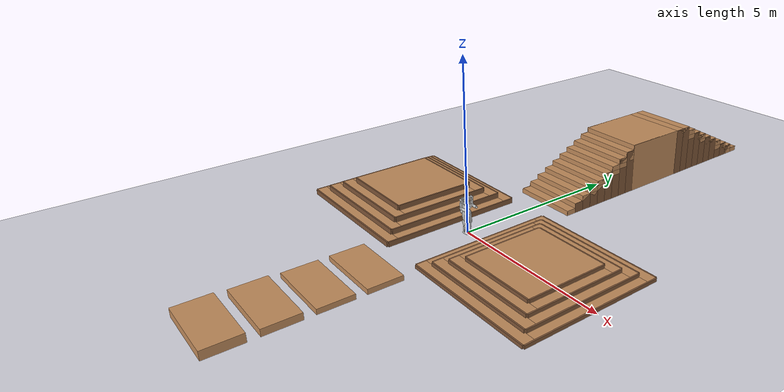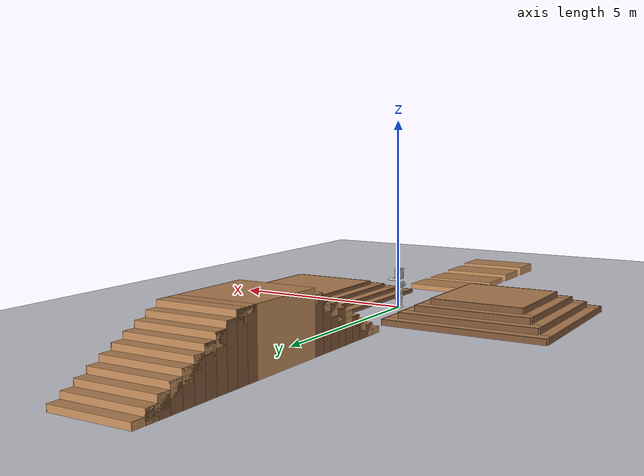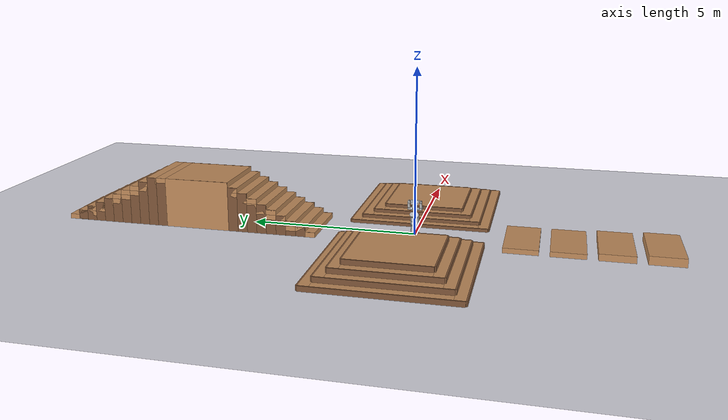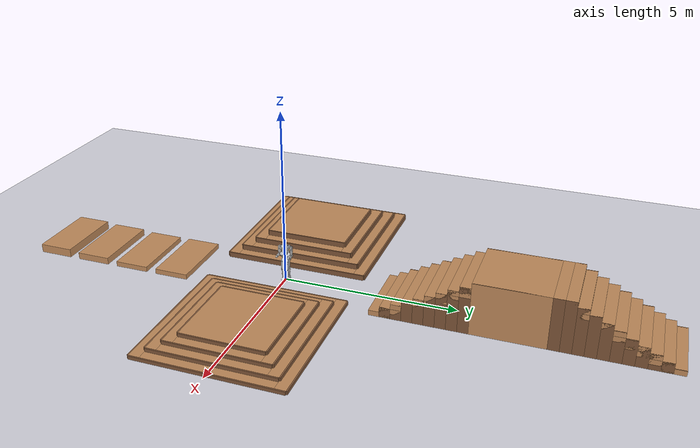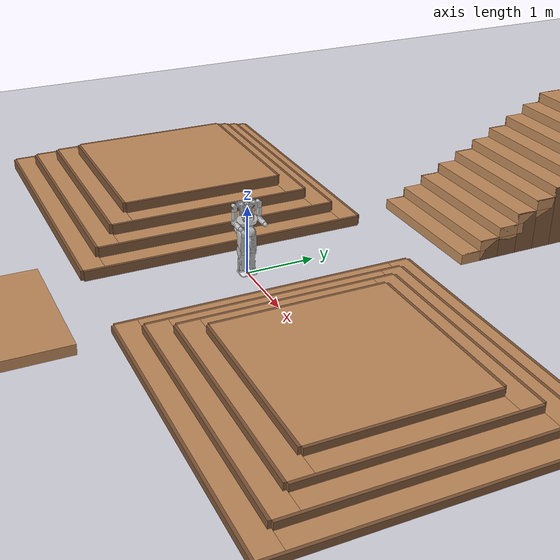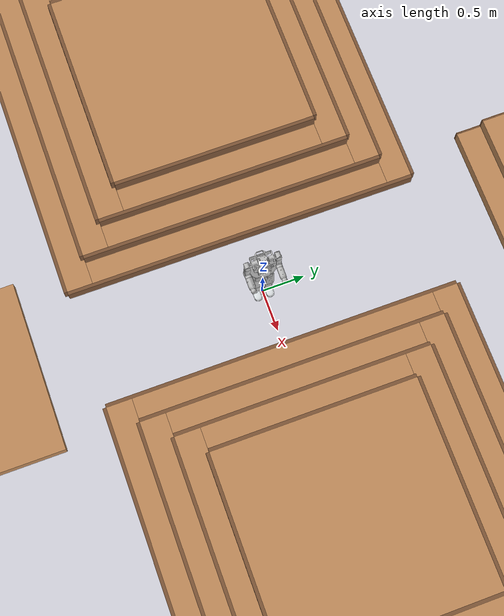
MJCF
<mujoco model="rpo">
<compiler angle="radian" meshdir="../meshes/" eulerseq="zyx"/>
<option timestep="0.001" iterations="100" solver="PGS" gravity="0 0 -9.81">
<flag frictionloss="enable"/>
</option>
<size njmax="5000" nconmax="1000"/>
<visual>
<quality shadowsize="4096"/>
<map znear="0.001" zfar="50"/>
</visual>
<default>
<joint limited="true"/>
<motor ctrllimited="true"/>
<geom condim="4" contype="1" conaffinity="0" solref="0.001 2" friction="0.9 0.2 0.2" group="1"/>
<equality solref="0.001 2"/>
<default class="visualgeom">
<geom material="visualgeom" condim="1" contype="0" conaffinity="0"/>
</default>
<default class="obstacle">
<geom material="obstacle" condim="3" contype="1" conaffinity="15"/>
</default>
<default class="waist_joint_param">
<joint damping="0.01" frictionloss="0.01" armature="0.01"/>
</default>
<default class="leg_joint_param">
<joint damping="0.01" frictionloss="0.01" armature="0.01"/>
</default>
<default class="arm_joint_param">
<joint damping="0.01" frictionloss="0.01" armature="0.01"/>
</default>
<!-- Environment: stair box geoms use same solref as robot collision (was 0.02 → soft / visible sink vs plane). -->
<default class="stair_tread">
<geom type="box" condim="4" contype="1" conaffinity="15" friction="1 0.005 0.0001"
      solref="0.001 2" margin="0" gap="0" priority="1"
      material="mat_stair_tread" group="0"/>
</default>
<default class="stair_riser">
<geom type="box" condim="4" contype="1" conaffinity="15" friction="1 0.005 0.0001"
      solref="0.001 2" margin="0" gap="0" priority="1"
      material="mat_stair_riser" group="0"/>
</default>
</default>
<asset>
<texture type="skybox" builtin="gradient" rgb1="0.68 0.84 0.98" rgb2="0.90 0.95 1.0" width="512" height="512"/>
<texture name="tex_marble" type="2d" builtin="checker" width="512" height="512" rgb1="0.92 0.92 0.94" rgb2="0.76 0.76 0.82"/>
<material name="matplane" texture="tex_marble" texrepeat="20 20" specular="0.52" shininess="0.58" reflectance="0.14" rgba="1 1 1 1"/>
<material name="mat_stair_tread" rgba="0.76 0.55 0.36 1" reflectance="0.07" specular="0.22" shininess="0.32"/>
<material name="mat_stair_riser" rgba="0.50 0.34 0.22 1" reflectance="0.05" specular="0.14" shininess="0.22"/>
<material name="obstacle" rgba="0.9 0.6 0.2 1"/>
<material name="visualgeom" rgba="0.5 0.9 0.2 1"/>
<mesh name="base_link" file="base_link.STL"/>
<mesh name="left_thigh_yaw_link" file="left_thigh_yaw_link.STL"/>
<mesh name="left_thigh_roll_link" file="left_thigh_roll_link.STL"/>
<mesh name="left_thigh_pitch_link" file="left_thigh_pitch_link.STL"/>
<mesh name="left_knee_link" file="left_knee_link.STL"/>
<mesh name="left_ankle_pitch_link" file="left_ankle_pitch_link.STL"/>
<mesh name="left_ankle_roll_link" file="left_ankle_roll_link.STL"/>
<mesh name="right_thigh_yaw_link" file="right_thigh_yaw_link.STL"/>
<mesh name="right_thigh_roll_link" file="right_thigh_roll_link.STL"/>
<mesh name="right_thigh_pitch_link" file="right_thigh_pitch_link.STL"/>
<mesh name="right_knee_link" file="right_knee_link.STL"/>
<mesh name="right_ankle_pitch_link" file="right_ankle_pitch_link.STL"/>
<mesh name="right_ankle_roll_link" file="right_ankle_roll_link.STL"/>
<mesh name="torso_link" file="torso_link.STL"/>
<mesh name="left_arm_pitch_link" file="left_arm_pitch_link.STL"/>
<mesh name="left_arm_roll_link" file="left_arm_roll_link.STL"/>
<mesh name="left_arm_yaw_link" file="left_arm_yaw_link.STL"/>
<mesh name="left_elbow_pitch_link" file="left_elbow_pitch_link.STL"/>
<mesh name="left_elbow_yaw_link" file="left_elbow_yaw_link.STL"/>
<mesh name="right_arm_pitch_link" file="right_arm_pitch_link.STL"/>
<mesh name="right_arm_roll_link" file="right_arm_roll_link.STL"/>
<mesh name="right_arm_yaw_link" file="right_arm_yaw_link.STL"/>
<mesh name="right_elbow_pitch_link" file="right_elbow_pitch_link.STL"/>
<mesh name="right_elbow_yaw_link" file="right_elbow_yaw_link.STL"/>
<hfield name="hf0" nrow="200" ncol="200" size="10 5 0.2 .1"/>
</asset>
<worldbody>
<light directional="true" diffuse=".4 .4 .4" specular="0.1 0.1 0.1" pos="0 0 5.0" dir="0 0 -1" castshadow="false"/>
<light directional="true" diffuse=".6 .6 .6" specular="0.2 0.2 0.2" pos="0 0 4" dir="0 0 -1"/>
<geom name="ground" type="plane" size="0 0 1" pos="0.001 0 0" quat="1 0 0 0" material="matplane" condim="1" conaffinity="15" group="0"/>
<!-- Parkour: 10cm pyramid ahead of robot spawn (+X), center 2.8 m from origin. -->
<body name="stairs_pyramid_up" pos="2.8 0 0">
<geom name="pyramid_riser_0_rs_1" class="stair_riser" pos="0.000000 -2.120000 0.050000" size="2.100000 0.020000 0.050000"/>
<geom name="pyramid_riser_0_rn_2" class="stair_riser" pos="0.000000 2.120000 0.050000" size="2.100000 0.020000 0.050000"/>
<geom name="pyramid_riser_0_rw_3" class="stair_riser" pos="-2.120000 0.000000 0.050000" size="0.020000 2.100000 0.050000"/>
<geom name="pyramid_riser_0_re_4" class="stair_riser" pos="2.120000 0.000000 0.050000" size="0.020000 2.100000 0.050000"/>
<geom name="pyramid_ring_1_s_5" class="stair_tread" pos="0.000000 -1.950000 0.050000" size="2.100000 0.150000 0.050000"/>
<geom name="pyramid_ring_1_n_6" class="stair_tread" pos="0.000000 1.950000 0.050000" size="2.100000 0.150000 0.050000"/>
<geom name="pyramid_ring_1_w_7" class="stair_tread" pos="-1.950000 0.000000 0.050000" size="0.150000 1.800000 0.050000"/>
<geom name="pyramid_ring_1_e_8" class="stair_tread" pos="1.950000 0.000000 0.050000" size="0.150000 1.800000 0.050000"/>
<geom name="pyramid_riser_1_rs_9" class="stair_riser" pos="0.000000 -1.820000 0.150000" size="1.800000 0.020000 0.050000"/>
<geom name="pyramid_riser_1_rn_10" class="stair_riser" pos="0.000000 1.820000 0.150000" size="1.800000 0.020000 0.050000"/>
<geom name="pyramid_riser_1_rw_11" class="stair_riser" pos="-1.820000 0.000000 0.150000" size="0.020000 1.800000 0.050000"/>
<geom name="pyramid_riser_1_re_12" class="stair_riser" pos="1.820000 0.000000 0.150000" size="0.020000 1.800000 0.050000"/>
<geom name="pyramid_ring_2_s_13" class="stair_tread" pos="0.000000 -1.650000 0.150000" size="1.800000 0.150000 0.050000"/>
<geom name="pyramid_ring_2_n_14" class="stair_tread" pos="0.000000 1.650000 0.150000" size="1.800000 0.150000 0.050000"/>
<geom name="pyramid_ring_2_w_15" class="stair_tread" pos="-1.650000 0.000000 0.150000" size="0.150000 1.500000 0.050000"/>
<geom name="pyramid_ring_2_e_16" class="stair_tread" pos="1.650000 0.000000 0.150000" size="0.150000 1.500000 0.050000"/>
<geom name="pyramid_riser_2_rs_17" class="stair_riser" pos="0.000000 -1.520000 0.250000" size="1.500000 0.020000 0.050000"/>
<geom name="pyramid_riser_2_rn_18" class="stair_riser" pos="0.000000 1.520000 0.250000" size="1.500000 0.020000 0.050000"/>
<geom name="pyramid_riser_2_rw_19" class="stair_riser" pos="-1.520000 0.000000 0.250000" size="0.020000 1.500000 0.050000"/>
<geom name="pyramid_riser_2_re_20" class="stair_riser" pos="1.520000 0.000000 0.250000" size="0.020000 1.500000 0.050000"/>
<geom name="pyramid_ring_3_s_21" class="stair_tread" pos="0.000000 -1.350000 0.250000" size="1.500000 0.150000 0.050000"/>
<geom name="pyramid_ring_3_n_22" class="stair_tread" pos="0.000000 1.350000 0.250000" size="1.500000 0.150000 0.050000"/>
<geom name="pyramid_ring_3_w_23" class="stair_tread" pos="-1.350000 0.000000 0.250000" size="0.150000 1.200000 0.050000"/>
<geom name="pyramid_ring_3_e_24" class="stair_tread" pos="1.350000 0.000000 0.250000" size="0.150000 1.200000 0.050000"/>
<geom name="pyramid_riser_3_rs_25" class="stair_riser" pos="0.000000 -1.220000 0.350000" size="1.200000 0.020000 0.050000"/>
<geom name="pyramid_riser_3_rn_26" class="stair_riser" pos="0.000000 1.220000 0.350000" size="1.200000 0.020000 0.050000"/>
<geom name="pyramid_riser_3_rw_27" class="stair_riser" pos="-1.220000 0.000000 0.350000" size="0.020000 1.200000 0.050000"/>
<geom name="pyramid_riser_3_re_28" class="stair_riser" pos="1.220000 0.000000 0.350000" size="0.020000 1.200000 0.050000"/>
<geom name="pyramid_top" class="stair_tread" pos="0.000000 0.000000 0.350000" size="1.200000 1.200000 0.050000"/>
</body>
<!-- Second pyramid: 15cm rise; behind robot (-X), center 2.8 m from origin. -->
<body name="stairs_pyramid_up_h015" pos="-2.8 0 0">
<geom name="pyramid_h015_riser_0_rs" class="stair_riser" pos="0.000000 -2.120000 0.075000" size="2.100000 0.020000 0.075000"/>
<geom name="pyramid_h015_riser_0_rn" class="stair_riser" pos="0.000000 2.120000 0.075000" size="2.100000 0.020000 0.075000"/>
<geom name="pyramid_h015_riser_0_rw" class="stair_riser" pos="-2.120000 0.000000 0.075000" size="0.020000 2.100000 0.075000"/>
<geom name="pyramid_h015_riser_0_re" class="stair_riser" pos="2.120000 0.000000 0.075000" size="0.020000 2.100000 0.075000"/>
<geom name="pyramid_h015_ring_1_s" class="stair_tread" pos="0.000000 -1.950000 0.075000" size="2.100000 0.150000 0.075000"/>
<geom name="pyramid_h015_ring_1_n" class="stair_tread" pos="0.000000 1.950000 0.075000" size="2.100000 0.150000 0.075000"/>
<geom name="pyramid_h015_ring_1_w" class="stair_tread" pos="-1.950000 0.000000 0.075000" size="0.150000 1.800000 0.075000"/>
<geom name="pyramid_h015_ring_1_e" class="stair_tread" pos="1.950000 0.000000 0.075000" size="0.150000 1.800000 0.075000"/>
<geom name="pyramid_h015_riser_1_rs" class="stair_riser" pos="0.000000 -1.820000 0.225000" size="1.800000 0.020000 0.075000"/>
<geom name="pyramid_h015_riser_1_rn" class="stair_riser" pos="0.000000 1.820000 0.225000" size="1.800000 0.020000 0.075000"/>
<geom name="pyramid_h015_riser_1_rw" class="stair_riser" pos="-1.820000 0.000000 0.225000" size="0.020000 1.800000 0.075000"/>
<geom name="pyramid_h015_riser_1_re" class="stair_riser" pos="1.820000 0.000000 0.225000" size="0.020000 1.800000 0.075000"/>
<geom name="pyramid_h015_ring_2_s" class="stair_tread" pos="0.000000 -1.650000 0.225000" size="1.800000 0.150000 0.075000"/>
<geom name="pyramid_h015_ring_2_n" class="stair_tread" pos="0.000000 1.650000 0.225000" size="1.800000 0.150000 0.075000"/>
<geom name="pyramid_h015_ring_2_w" class="stair_tread" pos="-1.650000 0.000000 0.225000" size="0.150000 1.500000 0.075000"/>
<geom name="pyramid_h015_ring_2_e" class="stair_tread" pos="1.650000 0.000000 0.225000" size="0.150000 1.500000 0.075000"/>
<geom name="pyramid_h015_riser_2_rs" class="stair_riser" pos="0.000000 -1.520000 0.375000" size="1.500000 0.020000 0.075000"/>
<geom name="pyramid_h015_riser_2_rn" class="stair_riser" pos="0.000000 1.520000 0.375000" size="1.500000 0.020000 0.075000"/>
<geom name="pyramid_h015_riser_2_rw" class="stair_riser" pos="-1.520000 0.000000 0.375000" size="0.020000 1.500000 0.075000"/>
<geom name="pyramid_h015_riser_2_re" class="stair_riser" pos="1.520000 0.000000 0.375000" size="0.020000 1.500000 0.075000"/>
<geom name="pyramid_h015_ring_3_s" class="stair_tread" pos="0.000000 -1.350000 0.375000" size="1.500000 0.150000 0.075000"/>
<geom name="pyramid_h015_ring_3_n" class="stair_tread" pos="0.000000 1.350000 0.375000" size="1.500000 0.150000 0.075000"/>
<geom name="pyramid_h015_ring_3_w" class="stair_tread" pos="-1.350000 0.000000 0.375000" size="0.150000 1.200000 0.075000"/>
<geom name="pyramid_h015_ring_3_e" class="stair_tread" pos="1.350000 0.000000 0.375000" size="0.150000 1.200000 0.075000"/>
<geom name="pyramid_h015_riser_3_rs" class="stair_riser" pos="0.000000 -1.220000 0.525000" size="1.200000 0.020000 0.075000"/>
<geom name="pyramid_h015_riser_3_rn" class="stair_riser" pos="0.000000 1.220000 0.525000" size="1.200000 0.020000 0.075000"/>
<geom name="pyramid_h015_riser_3_rw" class="stair_riser" pos="-1.220000 0.000000 0.525000" size="0.020000 1.200000 0.075000"/>
<geom name="pyramid_h015_riser_3_re" class="stair_riser" pos="1.220000 0.000000 0.525000" size="0.020000 1.200000 0.075000"/>
<geom name="pyramid_h015_top" class="stair_tread" pos="0.000000 0.000000 0.525000" size="1.200000 1.200000 0.075000"/>
</body>
<!-- Trapezoid: entry + 10 up + platform + 9 down (far end unchanged). body Y=10.5m -->
<body name="stairs_trapezoid" pos="0.000000 10.500000 0.000000">
<geom name="trap_up_entry" class="stair_tread" pos="0.000000 0.150000 0.075000" size="1.000000 0.150000 0.075000"/>
<geom name="trap_up_entry_wl" class="stair_riser" pos="-0.990000 0.150000 0.075000" size="0.010000 0.150000 0.075000"/>
<geom name="trap_up_entry_wr" class="stair_riser" pos="0.990000 0.150000 0.075000" size="0.010000 0.150000 0.075000"/>
<geom name="trap_up_tread_0" class="stair_tread" pos="0.000000 -0.150000 0.075000" size="1.000000 0.150000 0.075000"/>
<geom name="trap_up_infill_0" class="stair_tread" pos="0.000000 -0.150000 0.225000" size="1.000000 0.150000 0.075000"/>
<geom name="trap_up_tread_0_wl" class="stair_riser" pos="-0.990000 -0.150000 0.150000" size="0.010000 0.150000 0.150000"/>
<geom name="trap_up_tread_0_wr" class="stair_riser" pos="0.990000 -0.150000 0.150000" size="0.010000 0.150000 0.150000"/>
<geom name="trap_up_tread_1" class="stair_tread" pos="0.000000 -0.450000 0.225000" size="1.000000 0.150000 0.075000"/>
<geom name="trap_up_infill_1" class="stair_tread" pos="0.000000 -0.450000 0.375000" size="1.000000 0.150000 0.075000"/>
<geom name="trap_up_tread_1_wl" class="stair_riser" pos="-0.990000 -0.450000 0.225000" size="0.010000 0.150000 0.225000"/>
<geom name="trap_up_tread_1_wr" class="stair_riser" pos="0.990000 -0.450000 0.225000" size="0.010000 0.150000 0.225000"/>
<geom name="trap_up_tread_2" class="stair_tread" pos="0.000000 -0.750000 0.375000" size="1.000000 0.150000 0.075000"/>
<geom name="trap_up_infill_2" class="stair_tread" pos="0.000000 -0.750000 0.525000" size="1.000000 0.150000 0.075000"/>
<geom name="trap_up_tread_2_wl" class="stair_riser" pos="-0.990000 -0.750000 0.300000" size="0.010000 0.150000 0.300000"/>
<geom name="trap_up_tread_2_wr" class="stair_riser" pos="0.990000 -0.750000 0.300000" size="0.010000 0.150000 0.300000"/>
<geom name="trap_up_tread_3" class="stair_tread" pos="0.000000 -1.050000 0.525000" size="1.000000 0.150000 0.075000"/>
<geom name="trap_up_infill_3" class="stair_tread" pos="0.000000 -1.050000 0.675000" size="1.000000 0.150000 0.075000"/>
<geom name="trap_up_tread_3_wl" class="stair_riser" pos="-0.990000 -1.050000 0.375000" size="0.010000 0.150000 0.375000"/>
<geom name="trap_up_tread_3_wr" class="stair_riser" pos="0.990000 -1.050000 0.375000" size="0.010000 0.150000 0.375000"/>
<geom name="trap_up_tread_4" class="stair_tread" pos="0.000000 -1.350000 0.675000" size="1.000000 0.150000 0.075000"/>
<geom name="trap_up_infill_4" class="stair_tread" pos="0.000000 -1.350000 0.825000" size="1.000000 0.150000 0.075000"/>
<geom name="trap_up_tread_4_wl" class="stair_riser" pos="-0.990000 -1.350000 0.450000" size="0.010000 0.150000 0.450000"/>
<geom name="trap_up_tread_4_wr" class="stair_riser" pos="0.990000 -1.350000 0.450000" size="0.010000 0.150000 0.450000"/>
<geom name="trap_up_tread_5" class="stair_tread" pos="0.000000 -1.650000 0.825000" size="1.000000 0.150000 0.075000"/>
<geom name="trap_up_infill_5" class="stair_tread" pos="0.000000 -1.650000 0.975000" size="1.000000 0.150000 0.075000"/>
<geom name="trap_up_tread_5_wl" class="stair_riser" pos="-0.990000 -1.650000 0.525000" size="0.010000 0.150000 0.525000"/>
<geom name="trap_up_tread_5_wr" class="stair_riser" pos="0.990000 -1.650000 0.525000" size="0.010000 0.150000 0.525000"/>
<geom name="trap_up_tread_6" class="stair_tread" pos="0.000000 -1.950000 0.975000" size="1.000000 0.150000 0.075000"/>
<geom name="trap_up_infill_6" class="stair_tread" pos="0.000000 -1.950000 1.125000" size="1.000000 0.150000 0.075000"/>
<geom name="trap_up_tread_6_wl" class="stair_riser" pos="-0.990000 -1.950000 0.600000" size="0.010000 0.150000 0.600000"/>
<geom name="trap_up_tread_6_wr" class="stair_riser" pos="0.990000 -1.950000 0.600000" size="0.010000 0.150000 0.600000"/>
<geom name="trap_up_tread_7" class="stair_tread" pos="0.000000 -2.250000 1.125000" size="1.000000 0.150000 0.075000"/>
<geom name="trap_up_infill_7" class="stair_tread" pos="0.000000 -2.250000 1.275000" size="1.000000 0.150000 0.075000"/>
<geom name="trap_up_tread_7_wl" class="stair_riser" pos="-0.990000 -2.250000 0.675000" size="0.010000 0.150000 0.675000"/>
<geom name="trap_up_tread_7_wr" class="stair_riser" pos="0.990000 -2.250000 0.675000" size="0.010000 0.150000 0.675000"/>
<geom name="trap_up_tread_8" class="stair_tread" pos="0.000000 -2.550000 1.275000" size="1.000000 0.150000 0.075000"/>
<geom name="trap_up_infill_8" class="stair_tread" pos="0.000000 -2.550000 1.425000" size="1.000000 0.150000 0.075000"/>
<geom name="trap_up_tread_8_wl" class="stair_riser" pos="-0.990000 -2.550000 0.750000" size="0.010000 0.150000 0.750000"/>
<geom name="trap_up_tread_8_wr" class="stair_riser" pos="0.990000 -2.550000 0.750000" size="0.010000 0.150000 0.750000"/>
<geom name="trap_up_tread_9" class="stair_tread" pos="0.000000 -2.850000 1.425000" size="1.000000 0.150000 0.075000"/>
<geom name="trap_up_tread_9_wl" class="stair_riser" pos="-0.990000 -2.850000 0.750000" size="0.010000 0.150000 0.750000"/>
<geom name="trap_up_tread_9_wr" class="stair_riser" pos="0.990000 -2.850000 0.750000" size="0.010000 0.150000 0.750000"/>
<geom name="trap_platform" class="stair_tread" pos="0.000000 -4.000000 0.750000" size="1.000000 1.000000 0.750000"/>
<geom name="trap_platform_wl" class="stair_riser" pos="-0.990000 -4.000000 0.750000" size="0.010000 1.000000 0.750000"/>
<geom name="trap_platform_wr" class="stair_riser" pos="0.990000 -4.000000 0.750000" size="0.010000 1.000000 0.750000"/>
<geom name="trap_down_tread_0" class="stair_tread" pos="0.000000 -5.150000 1.275000" size="1.000000 0.150000 0.075000"/>
<geom name="trap_down_infill_0" class="stair_tread" pos="0.000000 -5.150000 1.125000" size="1.000000 0.150000 0.075000"/>
<geom name="trap_down_tread_0_wl" class="stair_riser" pos="-0.990000 -5.150000 0.675000" size="0.010000 0.150000 0.675000"/>
<geom name="trap_down_tread_0_wr" class="stair_riser" pos="0.990000 -5.150000 0.675000" size="0.010000 0.150000 0.675000"/>
<geom name="trap_down_tread_1" class="stair_tread" pos="0.000000 -5.450000 1.125000" size="1.000000 0.150000 0.075000"/>
<geom name="trap_down_infill_1" class="stair_tread" pos="0.000000 -5.450000 0.975000" size="1.000000 0.150000 0.075000"/>
<geom name="trap_down_tread_1_wl" class="stair_riser" pos="-0.990000 -5.450000 0.600000" size="0.010000 0.150000 0.600000"/>
<geom name="trap_down_tread_1_wr" class="stair_riser" pos="0.990000 -5.450000 0.600000" size="0.010000 0.150000 0.600000"/>
<geom name="trap_down_tread_2" class="stair_tread" pos="0.000000 -5.750000 0.975000" size="1.000000 0.150000 0.075000"/>
<geom name="trap_down_infill_2" class="stair_tread" pos="0.000000 -5.750000 0.825000" size="1.000000 0.150000 0.075000"/>
<geom name="trap_down_tread_2_wl" class="stair_riser" pos="-0.990000 -5.750000 0.525000" size="0.010000 0.150000 0.525000"/>
<geom name="trap_down_tread_2_wr" class="stair_riser" pos="0.990000 -5.750000 0.525000" size="0.010000 0.150000 0.525000"/>
<geom name="trap_down_tread_3" class="stair_tread" pos="0.000000 -6.050000 0.825000" size="1.000000 0.150000 0.075000"/>
<geom name="trap_down_infill_3" class="stair_tread" pos="0.000000 -6.050000 0.675000" size="1.000000 0.150000 0.075000"/>
<geom name="trap_down_tread_3_wl" class="stair_riser" pos="-0.990000 -6.050000 0.450000" size="0.010000 0.150000 0.450000"/>
<geom name="trap_down_tread_3_wr" class="stair_riser" pos="0.990000 -6.050000 0.450000" size="0.010000 0.150000 0.450000"/>
<geom name="trap_down_tread_4" class="stair_tread" pos="0.000000 -6.350000 0.675000" size="1.000000 0.150000 0.075000"/>
<geom name="trap_down_infill_4" class="stair_tread" pos="0.000000 -6.350000 0.525000" size="1.000000 0.150000 0.075000"/>
<geom name="trap_down_tread_4_wl" class="stair_riser" pos="-0.990000 -6.350000 0.375000" size="0.010000 0.150000 0.375000"/>
<geom name="trap_down_tread_4_wr" class="stair_riser" pos="0.990000 -6.350000 0.375000" size="0.010000 0.150000 0.375000"/>
<geom name="trap_down_tread_5" class="stair_tread" pos="0.000000 -6.650000 0.525000" size="1.000000 0.150000 0.075000"/>
<geom name="trap_down_infill_5" class="stair_tread" pos="0.000000 -6.650000 0.375000" size="1.000000 0.150000 0.075000"/>
<geom name="trap_down_tread_5_wl" class="stair_riser" pos="-0.990000 -6.650000 0.300000" size="0.010000 0.150000 0.300000"/>
<geom name="trap_down_tread_5_wr" class="stair_riser" pos="0.990000 -6.650000 0.300000" size="0.010000 0.150000 0.300000"/>
<geom name="trap_down_tread_6" class="stair_tread" pos="0.000000 -6.950000 0.375000" size="1.000000 0.150000 0.075000"/>
<geom name="trap_down_infill_6" class="stair_tread" pos="0.000000 -6.950000 0.225000" size="1.000000 0.150000 0.075000"/>
<geom name="trap_down_tread_6_wl" class="stair_riser" pos="-0.990000 -6.950000 0.225000" size="0.010000 0.150000 0.225000"/>
<geom name="trap_down_tread_6_wr" class="stair_riser" pos="0.990000 -6.950000 0.225000" size="0.010000 0.150000 0.225000"/>
<geom name="trap_down_tread_7" class="stair_tread" pos="0.000000 -7.250000 0.225000" size="1.000000 0.150000 0.075000"/>
<geom name="trap_down_infill_7" class="stair_tread" pos="0.000000 -7.250000 0.075000" size="1.000000 0.150000 0.075000"/>
<geom name="trap_down_tread_7_wl" class="stair_riser" pos="-0.990000 -7.250000 0.150000" size="0.010000 0.150000 0.150000"/>
<geom name="trap_down_tread_7_wr" class="stair_riser" pos="0.990000 -7.250000 0.150000" size="0.010000 0.150000 0.150000"/>
<geom name="trap_down_tread_8" class="stair_tread" pos="0.000000 -7.550000 0.075000" size="1.000000 0.150000 0.075000"/>
<geom name="trap_down_tread_8_wl" class="stair_riser" pos="-0.990000 -7.550000 0.075000" size="0.010000 0.150000 0.075000"/>
<geom name="trap_down_tread_8_wr" class="stair_riser" pos="0.990000 -7.550000 0.075000" size="0.010000 0.150000 0.075000"/>
</body>
<!-- Right of spawn (-Y): four platforms 2.0m x 1.0m (h 0.15/0.15/0.20/0.25m), 0.3m edge gap each. -->
<body name="platforms_right" pos="0.000000 -3.150000 0.000000">
<geom name="platform_right_near" class="stair_tread" pos="0.000000 0.000000 0.075000" size="1.000000 0.500000 0.075000"/>
<geom name="platform_right_far" class="stair_tread" pos="0.000000 -1.300000 0.075000" size="1.000000 0.500000 0.075000"/>
<geom name="platform_right_h20" class="stair_tread" pos="0.000000 -2.600000 0.100000" size="1.000000 0.500000 0.100000"/>
<geom name="platform_right_h25" class="stair_tread" pos="0.000000 -3.900000 0.125000" size="1.000000 0.500000 0.125000"/>
</body>
<body name="base_link" pos="0 0 0.75">
<site name="imu" size="0.01" pos="0.0 0 0.0"/>
<inertial pos="-0.04700769 -0.00000239 -0.00862801" mass="5.51295532" fullinertia="0.03052646 0.01536233 0.03006209 0.00000063 -0.00079063 0.00000026"/>
<joint name="floating_base_joint" type="free" limited="false"/>
<geom type="mesh" rgba="0.75294 0.75294 0.75294 1" mesh="base_link"/>
<body name="left_thigh_yaw_link" pos="-0.071093 0.0725 -0.051778">
<inertial pos="-0.03847656 -0.0000142 -0.05612329" mass="1.71784575" fullinertia="0.00319789 0.0024412 0.00251651 0.00000025 -0.00065088 0.00000117"/>
<joint name="left_thigh_yaw_joint" pos="0 0 0" axis="-0.499998 0 -0.866027" range="-1 0.2" class="leg_joint_param"/>
<geom type="mesh" rgba="0.69804 0.69804 0.69804 1" mesh="left_thigh_yaw_link"/>
<body name="left_thigh_roll_link" pos="-0.017693 0 -0.072346">
<inertial pos="0.05748778 -0.00601901 -0.03308921" mass="1.66236465" fullinertia="0.00212675 0.00351120 0.00228565 0.00003170 0.00014062 -0.00001801"/>
<joint name="left_thigh_roll_joint" pos="0 0 0" axis="0.866027 0 -0.499998" range="-0.2 2" class="leg_joint_param"/>
<geom type="mesh" rgba="0.69804 0.69804 0.69804 1" mesh="left_thigh_roll_link"/>
<body name="left_thigh_pitch_link" pos="0.060622 0.02085 -0.035">
<inertial pos="0.00004587 -0.01904764 -0.19858149" mass="2.34600715" fullinertia="0.02018963 0.02158818 0.00302937 -0.00000310 0.00001430 -0.00215090"/>
<joint name="left_thigh_pitch_joint" pos="0 0 0" axis="0 1 0" range="-2.5 0.8" class="leg_joint_param"/>
<geom type="mesh" rgba="0.69804 0.69804 0.69804 1" mesh="left_thigh_pitch_link"/>
<body name="left_knee_link" pos="0 0 -0.25">
<inertial pos="-0.00035292 -0.0132798 -0.15208271" mass="1.70223945" fullinertia="0.01013470 0.00981975 0.00110105 0.00002119 0.00003224 -0.00022577"/>
<joint name="left_knee_joint" pos="0 0 0" axis="0 1 0" range="0 2.5" class="leg_joint_param"/>
<geom type="mesh" rgba="0.69804 0.69804 0.69804 1" mesh="left_knee_link"/>
<body name="left_ankle_pitch_link" pos="0 -0.02085 -0.3">
<inertial pos="0.0 0.0 0.0" mass="0.084" fullinertia="0.00000863 0.00000863 0.00001448 0.0 0.0 0.0"/>
<joint name="left_ankle_pitch_joint" pos="0 0 0" axis="0 1 0" range="-0.7 0.7" class="leg_joint_param" frictionloss="0.05"/>
<geom type="mesh" rgba="0.69804 0.69804 0.69804 1" mesh="left_ankle_pitch_link"/>
<body name="left_ankle_roll_link">
<inertial pos="0.01454282 0.00284825 -0.02908608" mass="0.33517651" fullinertia="0.00013432 0.00054303 0.00058883 0.00001389 0.00002909 -0.00001883"/>
<joint name="left_ankle_roll_joint" pos="0 0 0" axis="1 0 0" range="-0.5 0.5" class="leg_joint_param" frictionloss="0.05"/>
<geom type="mesh" rgba="0.898039 0.917647 0.929412 1" mesh="left_ankle_roll_link"/>
</body>
</body>
</body>
</body>
</body>
</body>
<body name="right_thigh_yaw_link" pos="-0.071093 -0.0725 -0.051778">
<inertial pos="-0.03847656 0.0000142 -0.05612329" mass="1.71632614" fullinertia="0.00319396 0.0024375 0.00251592 0.0 -0.00065014 -0.00000003"/>
<joint name="right_thigh_yaw_joint" pos="0 0 0" axis="-0.499998 0 -0.866027" range="-0.2 1" class="leg_joint_param"/>
<geom type="mesh" rgba="0.752941 0.752941 0.752941 1" mesh="right_thigh_yaw_link"/>
<body name="right_thigh_roll_link" pos="-0.0189924084475403 0 -0.0715958163677252">
<inertial pos="0.05748778 0.00601901 -0.03308921" mass="1.66310652" fullinertia="0.00213051 0.00351195 0.00228331 -0.00003033 0.00013508 0.00001792"/>
<joint name="right_thigh_roll_joint" pos="0 0 0" axis="0.866027 0 -0.499998" range="-2 0.2" class="leg_joint_param"/>
<geom type="mesh" rgba="0.752941 0.752941 0.752941 1" mesh="right_thigh_roll_link"/>
<body name="right_thigh_pitch_link" pos="0.0619208163652291 -0.0208499999999942 -0.0357500000093095">
<inertial pos="0.00004587 0.01904764 -0.19858149" mass="2.34600715" fullinertia="0.02018963 0.02158818 0.00302937 0.00000309 0.00001431 0.0021509"/>
<joint name="right_thigh_pitch_joint" pos="0 0 0" axis="0 1 0" range="-2.5 0.8" class="leg_joint_param"/>
<geom type="mesh" rgba="0.752941 0.752941 0.752941 1" mesh="right_thigh_pitch_link"/>
<body name="right_knee_link" pos="0 0 -0.250000000000016">
<inertial pos="-0.00035292 0.0132798 -0.15208271" mass="1.70223945" fullinertia="0.0101347 0.00981975 0.00110105 0.00002119 -0.00003224 0.00022577"/>
<joint name="right_knee_joint" pos="0 0 0" axis="0 1 0" range="0 2.5" class="leg_joint_param"/>
<geom type="mesh" rgba="0.752941 0.752941 0.752941 1" mesh="right_knee_link"/>
<body name="right_ankle_pitch_link" pos="0 0.0208500000000073 -0.299999999999986">
<inertial pos="0 0 0" mass="0.084" fullinertia="0.00000863 0.00000863 0.00001448 0 0 0"/>
<joint name="right_ankle_pitch_joint" pos="0 0 0" axis="0 1 0" range="-0.7 0.7" class="leg_joint_param" frictionloss="0.05"/>
<geom type="mesh" rgba="0.752941 0.752941 0.752941 1" mesh="right_ankle_pitch_link"/>
<body name="right_ankle_roll_link">
<inertial pos="0.01454282 -0.00284825 -0.02908608" mass="0.33517651" fullinertia="0.00013432 0.00054303 0.00058883 -0.00001388 0.00002909 0.00001883"/>
<joint name="right_ankle_roll_joint" pos="0 0 0" axis="1 0 0" range="-0.5 0.5" class="leg_joint_param" frictionloss="0.05"/>
<geom type="mesh" rgba="0.898039 0.917647 0.929412 1" mesh="right_ankle_roll_link"/>
</body>
</body>
</body>
</body>
</body>
</body>
<body name="torso_link" pos="-0.0281649492242451 0 0.0672000000054882">
<inertial pos="-0.007151 -0.000080 0.109682" mass="6.768" fullinertia="0.057474726 0.051674189 0.033809380 0.000049496 0.001894736 -0.000022694"/>
<joint name="torso_joint" pos="0 0 0" axis="0 0 1" range="-2.62 2.62" class="waist_joint_param"/>
<geom type="mesh" rgba="0.752941 0.752941 0.752941 1" mesh="torso_link"/>
<body name="left_arm_pitch_link" pos="0 0.121749999999383 0.206175860782433">
<inertial pos="-0.00436523 0.04995146 0.0" mass="0.47284363" fullinertia="0.00015644 0.00008197 0.00018907 0.00002207 0.0 0.0"/>
<joint name="left_arm_pitch_joint" pos="0 0 0" axis="0 1 0" range="-3.14 2.57" class="arm_joint_param"/>
<geom type="mesh" rgba="0.752941 0.752941 0.752941 1" mesh="left_arm_pitch_link"/>
<body name="left_arm_roll_link" pos="0.02 0.056 0">
<inertial pos="-0.0029007 0.0 -0.02197112" mass="0.08401883" fullinertia="0.00004601 0.00005649 0.00002712 0.0 -0.00001743 0.0"/>
<joint name="left_arm_roll_joint" pos="0 0 0" axis="1 0 0" range="-0.25 3.14" class="arm_joint_param"/>
<geom type="mesh" rgba="0.752941 0.752941 0.752941 1" mesh="left_arm_roll_link"/>
<body name="left_arm_yaw_link" pos="-0.02 0 -0.05">
<inertial pos="-0.00004328 -0.0018211 -0.10615895" mass="1.15324354" fullinertia="0.00619553 0.00615816 0.0003308 -0.00000002 -0.00000077 -0.0001812"/>
<joint name="left_arm_yaw_joint" pos="0 0 0" axis="0 0 -1" range="-2.6 2.6" class="arm_joint_param"/>
<geom type="mesh" rgba="0.752941 0.752941 0.752941 1" mesh="left_arm_yaw_link"/>
<body name="left_elbow_pitch_link" pos="0 0.02 -0.18875">
<inertial pos="0.02378501 -0.00433076 0.0" mass="0.09168684" fullinertia="0.00003059 0.00005023 0.00006277 0.00002004 0.0 0.0"/>
<joint name="left_elbow_pitch_joint" pos="0 0 0" axis="0 1 0" range="-1 3.57" class="arm_joint_param"/>
<geom type="mesh" rgba="0.752941 0.752941 0.752941 1" mesh="left_elbow_pitch_link"/>
<body name="left_elbow_yaw_link" pos="0.05 -0.02 0">
<inertial pos="0.05317619 -0.0000345 -0.00001992" mass="0.68145595" fullinertia="0.00024481 0.00132562 0.00132647 -0.00000008 -0.00000014 -0.0000006"/>
<joint name="left_elbow_yaw_joint" pos="0 0 0" axis="1 0 0" range="-1.57 1.57" class="arm_joint_param"/>
<geom type="mesh" rgba="0.752941 0.752941 0.752941 1" mesh="left_elbow_yaw_link"/>
</body>
</body>
</body>
</body>
</body>
<body name="right_arm_pitch_link" pos="0 -0.12175 0.20518">
<inertial pos="-0.00436523 -0.04995146 0.0" mass="0.47284363" fullinertia="0.00015644 0.00008197 0.00018907 -0.00002207 0.0 0.0"/>
<joint name="right_arm_pitch_joint" pos="0 0 0" axis="0 1 0" range="-3.14 2.57" class="arm_joint_param"/>
<geom type="mesh" rgba="0.752941 0.752941 0.752941 1" mesh="right_arm_pitch_link"/>
<body name="right_arm_roll_link" pos="0.02 -0.056 0">
<inertial pos="-0.0029007 0.0 -0.02197112" mass="0.08401883" fullinertia="0.00004601 0.00005649 0.00002712 0.0 -0.00001743 0.0"/>
<joint name="right_arm_roll_joint" pos="0 0 0" axis="1 0 0" range="-3.14 0.25" class="arm_joint_param"/>
<geom type="mesh" rgba="0.752941 0.752941 0.752941 1" mesh="right_arm_roll_link"/>
<body name="right_arm_yaw_link" pos="-0.02 0 -0.05">
<inertial pos="-0.00004328 0.0018211 -0.10615895" mass="1.15429959" fullinertia="0.0062043 0.00616498 0.00033199 0.00000007 -0.00000008 0.00017831"/>
<joint name="right_arm_yaw_joint" pos="0 0 0" axis="0 0 -1" range="-2.6 2.6" class="arm_joint_param"/>
<geom type="mesh" rgba="0.752941 0.752941 0.752941 1" mesh="right_arm_yaw_link"/>
<body name="right_elbow_pitch_link" pos="0 -0.02 -0.18875">
<inertial pos="0.02378501 0.00433076 0.0" mass="0.09168684" fullinertia="0.00003059 0.00005023 0.00006277 -0.00002004 0.0 0.0"/>
<joint name="right_elbow_pitch_joint" pos="0 0 0" axis="0 1 0" range="-1.0 3.57" class="arm_joint_param"/>
<geom type="mesh" rgba="0.752941 0.752941 0.752941 1" mesh="right_elbow_pitch_link"/>
<body name="right_elbow_yaw_link" pos="0.05 0.02 0">
<inertial pos="0.05317619 0.0000345 -0.00001992" mass="0.68145595" fullinertia="0.00024481 0.00132562 0.00132647 0.00000008 0.00000014 -0.0000006"/>
<joint name="right_elbow_yaw_joint" pos="0 0 0" axis="1 0 0" range="-1.57 1.57" class="arm_joint_param"/>
<geom type="mesh" rgba="0.752941 0.752941 0.752941 1" mesh="right_elbow_yaw_link"/>
</body>
</body>
</body>
</body>
</body>
</body>
</body>
</worldbody>
<actuator>
<motor name="left_thigh_yaw_joint" joint="left_thigh_yaw_joint" gear="1" ctrllimited="true" ctrlrange="-200 200"/>
<motor name="left_thigh_roll_joint" joint="left_thigh_roll_joint" gear="1" ctrllimited="true" ctrlrange="-200 200"/>
<motor name="left_thigh_pitch_joint" joint="left_thigh_pitch_joint" gear="1" ctrllimited="true" ctrlrange="-200 200"/>
<motor name="left_knee_joint" joint="left_knee_joint" gear="1" ctrllimited="true" ctrlrange="-200 200"/>
<motor name="left_ankle_pitch_joint" joint="left_ankle_pitch_joint" gear="1" ctrllimited="true" ctrlrange="-200 200"/>
<motor name="left_ankle_roll_joint" joint="left_ankle_roll_joint" gear="1" ctrllimited="true" ctrlrange="-200 200"/>
<motor name="right_thigh_yaw_joint" joint="right_thigh_yaw_joint" gear="1" ctrllimited="true" ctrlrange="-200 200"/>
<motor name="right_thigh_roll_joint" joint="right_thigh_roll_joint" gear="1" ctrllimited="true" ctrlrange="-200 200"/>
<motor name="right_thigh_pitch_joint" joint="right_thigh_pitch_joint" gear="1" ctrllimited="true" ctrlrange="-200 200"/>
<motor name="right_knee_joint" joint="right_knee_joint" gear="1" ctrllimited="true" ctrlrange="-200 200"/>
<motor name="right_ankle_pitch_joint" joint="right_ankle_pitch_joint" gear="1" ctrllimited="true" ctrlrange="-200 200"/>
<motor name="right_ankle_roll_joint" joint="right_ankle_roll_joint" gear="1" ctrllimited="true" ctrlrange="-200 200"/>
<motor name="torso_joint" joint="torso_joint" gear="1" ctrllimited="true" ctrlrange="-200 200"/>
<motor name="left_arm_pitch_joint" joint="left_arm_pitch_joint" gear="1" ctrllimited="true" ctrlrange="-200 200"/>
<motor name="left_arm_roll_joint" joint="left_arm_roll_joint" gear="1" ctrllimited="true" ctrlrange="-200 200"/>
<motor name="left_arm_yaw_joint" joint="left_arm_yaw_joint" gear="1" ctrllimited="true" ctrlrange="-200 200"/>
<motor name="left_elbow_pitch_joint" joint="left_elbow_pitch_joint" gear="1" ctrllimited="true" ctrlrange="-200 200"/>
<motor name="left_elbow_yaw_joint" joint="left_elbow_yaw_joint" gear="1" ctrllimited="true" ctrlrange="-200 200"/>
<motor name="right_arm_pitch_joint" joint="right_arm_pitch_joint" gear="1" ctrllimited="true" ctrlrange="-200 200"/>
<motor name="right_arm_roll_joint" joint="right_arm_roll_joint" gear="1" ctrllimited="true" ctrlrange="-200 200"/>
<motor name="right_arm_yaw_joint" joint="right_arm_yaw_joint" gear="1" ctrllimited="true" ctrlrange="-200 200"/>
<motor name="right_elbow_pitch_joint" joint="right_elbow_pitch_joint" gear="1" ctrllimited="true" ctrlrange="-200 200"/>
<motor name="right_elbow_yaw_joint" joint="right_elbow_yaw_joint" gear="1" ctrllimited="true" ctrlrange="-200 200"/>
</actuator>
<sensor>
<actuatorpos name="left_thigh_yaw_p" actuator="left_thigh_yaw_joint" user="13"/>
<actuatorpos name="left_thigh_roll_p" actuator="left_thigh_roll_joint" user="13"/>
<actuatorpos name="left_thigh_pitch_p" actuator="left_thigh_pitch_joint" user="13"/>
<actuatorpos name="left_knee_p" actuator="left_knee_joint" user="13"/>
<actuatorpos name="left_ankle_pitch_p" actuator="left_ankle_pitch_joint" user="13"/>
<actuatorpos name="left_ankle_roll_p" actuator="left_ankle_roll_joint" user="13"/>
<actuatorpos name="right_thigh_yaw_p" actuator="right_thigh_yaw_joint" user="13"/>
<actuatorpos name="right_thigh_roll_p" actuator="right_thigh_roll_joint" user="13"/>
<actuatorpos name="right_thigh_pitch_p" actuator="right_thigh_pitch_joint" user="13"/>
<actuatorpos name="right_knee_p" actuator="right_knee_joint" user="13"/>
<actuatorpos name="right_ankle_pitch_p" actuator="right_ankle_pitch_joint" user="13"/>
<actuatorpos name="right_ankle_roll_p" actuator="right_ankle_roll_joint" user="13"/>
<actuatorpos name="torso_yaw_p" actuator="torso_joint" user="13"/>
<actuatorpos name="left_arm_pitch_p" actuator="left_arm_pitch_joint" user="13"/>
<actuatorpos name="left_arm_roll_p" actuator="left_arm_roll_joint" user="13"/>
<actuatorpos name="left_arm_yaw_p" actuator="left_arm_yaw_joint" user="13"/>
<actuatorpos name="left_elbow_pitch_p" actuator="left_elbow_pitch_joint" user="13"/>
<actuatorpos name="left_elbow_yaw_p" actuator="left_elbow_yaw_joint" user="13"/>
<actuatorpos name="right_arm_pitch_p" actuator="right_arm_pitch_joint" user="13"/>
<actuatorpos name="right_arm_roll_p" actuator="right_arm_roll_joint" user="13"/>
<actuatorpos name="right_arm_yaw_p" actuator="right_arm_yaw_joint" user="13"/>
<actuatorpos name="right_elbow_pitch_p" actuator="right_elbow_pitch_joint" user="13"/>
<actuatorpos name="right_elbow_yaw_p" actuator="right_elbow_yaw_joint" user="13"/>
<actuatorvel name="left_thigh_yaw_v" actuator="left_thigh_yaw_joint" user="13"/>
<actuatorvel name="left_thigh_roll_v" actuator="left_thigh_roll_joint" user="13"/>
<actuatorvel name="left_thigh_pitch_v" actuator="left_thigh_pitch_joint" user="13"/>
<actuatorvel name="left_knee_v" actuator="left_knee_joint" user="13"/>
<actuatorvel name="left_ankle_pitch_v" actuator="left_ankle_pitch_joint" user="13"/>
<actuatorvel name="left_ankle_roll_v" actuator="left_ankle_roll_joint" user="13"/>
<actuatorvel name="right_thigh_yaw_v" actuator="right_thigh_yaw_joint" user="13"/>
<actuatorvel name="right_thigh_roll_v" actuator="right_thigh_roll_joint" user="13"/>
<actuatorvel name="right_thigh_pitch_v" actuator="right_thigh_pitch_joint" user="13"/>
<actuatorvel name="right_knee_v" actuator="right_knee_joint" user="13"/>
<actuatorvel name="right_ankle_pitch_v" actuator="right_ankle_pitch_joint" user="13"/>
<actuatorvel name="right_ankle_roll_v" actuator="right_ankle_roll_joint" user="13"/>
<actuatorvel name="torso_yaw_v" actuator="torso_joint" user="13"/>
<actuatorvel name="left_arm_pitch_v" actuator="left_arm_pitch_joint" user="13"/>
<actuatorvel name="left_arm_roll_v" actuator="left_arm_roll_joint" user="13"/>
<actuatorvel name="left_arm_yaw_v" actuator="left_arm_yaw_joint" user="13"/>
<actuatorvel name="left_elbow_pitch_v" actuator="left_elbow_pitch_joint" user="13"/>
<actuatorvel name="left_elbow_yaw_v" actuator="left_elbow_yaw_joint" user="13"/>
<actuatorvel name="right_arm_pitch_v" actuator="right_arm_pitch_joint" user="13"/>
<actuatorvel name="right_arm_roll_v" actuator="right_arm_roll_joint" user="13"/>
<actuatorvel name="right_arm_yaw_v" actuator="right_arm_yaw_joint" user="13"/>
<actuatorvel name="right_elbow_pitch_v" actuator="right_elbow_pitch_joint" user="13"/>
<actuatorvel name="right_elbow_yaw_v" actuator="right_elbow_yaw_joint" user="13"/>
<actuatorfrc name="left_thigh_yaw_f" actuator="left_thigh_yaw_joint" user="13" noise="1e-3"/>
<actuatorfrc name="left_thigh_roll_f" actuator="left_thigh_roll_joint" user="13" noise="1e-3"/>
<actuatorfrc name="left_thigh_pitch_f" actuator="left_thigh_pitch_joint" user="13" noise="1e-3"/>
<actuatorfrc name="left_knee_f" actuator="left_knee_joint" user="13" noise="1e-3"/>
<actuatorfrc name="left_ankle_pitch_f" actuator="left_ankle_pitch_joint" user="13" noise="1e-3"/>
<actuatorfrc name="left_ankle_roll_f" actuator="left_ankle_roll_joint" user="13" noise="1e-3"/>
<actuatorfrc name="right_thigh_yaw_f" actuator="right_thigh_yaw_joint" user="13" noise="1e-3"/>
<actuatorfrc name="right_thigh_roll_f" actuator="right_thigh_roll_joint" user="13" noise="1e-3"/>
<actuatorfrc name="right_thigh_pitch_f" actuator="right_thigh_pitch_joint" user="13" noise="1e-3"/>
<actuatorfrc name="right_knee_f" actuator="right_knee_joint" user="13" noise="1e-3"/>
<actuatorfrc name="right_ankle_pitch_f" actuator="right_ankle_pitch_joint" user="13" noise="1e-3"/>
<actuatorfrc name="right_ankle_roll_f" actuator="right_ankle_roll_joint" user="13" noise="1e-3"/>
<actuatorfrc name="torso_yaw_f" actuator="torso_joint" user="13" noise="1e-3"/>
<actuatorfrc name="left_arm_pitch_f" actuator="left_arm_pitch_joint" user="13" noise="1e-3"/>
<actuatorfrc name="left_arm_roll_f" actuator="left_arm_roll_joint" user="13" noise="1e-3"/>
<actuatorfrc name="left_arm_yaw_f" actuator="left_arm_yaw_joint" user="13" noise="1e-3"/>
<actuatorfrc name="left_elbow_pitch_f" actuator="left_elbow_pitch_joint" user="13" noise="1e-3"/>
<actuatorfrc name="left_elbow_yaw_f" actuator="left_elbow_yaw_joint" user="13" noise="1e-3"/>
<actuatorfrc name="right_arm_pitch_f" actuator="right_arm_pitch_joint" user="13" noise="1e-3"/>
<actuatorfrc name="right_arm_roll_f" actuator="right_arm_roll_joint" user="13" noise="1e-3"/>
<actuatorfrc name="right_arm_yaw_f" actuator="right_arm_yaw_joint" user="13" noise="1e-3"/>
<actuatorfrc name="right_elbow_pitch_f" actuator="right_elbow_pitch_joint" user="13" noise="1e-3"/>
<actuatorfrc name="right_elbow_yaw_f" actuator="right_elbow_yaw_joint" user="13" noise="1e-3"/>
<framequat name="orientation" objtype="site" noise="0.001" objname="imu"/>
<framepos name="position" objtype="site" noise="0.001" objname="imu"/>
<gyro name="angular-velocity" site="imu" noise="0.005" cutoff="34.9"/>
<velocimeter name="linear-velocity" site="imu" noise="0.001" cutoff="30"/>
<accelerometer name="linear-acceleration" site="imu" noise="0.005" cutoff="157"/>
<magnetometer name="magnetometer" site="imu"/>
</sensor>
<visual>
<global offwidth="1920" offheight="1080"/>
</visual>
</mujoco>
